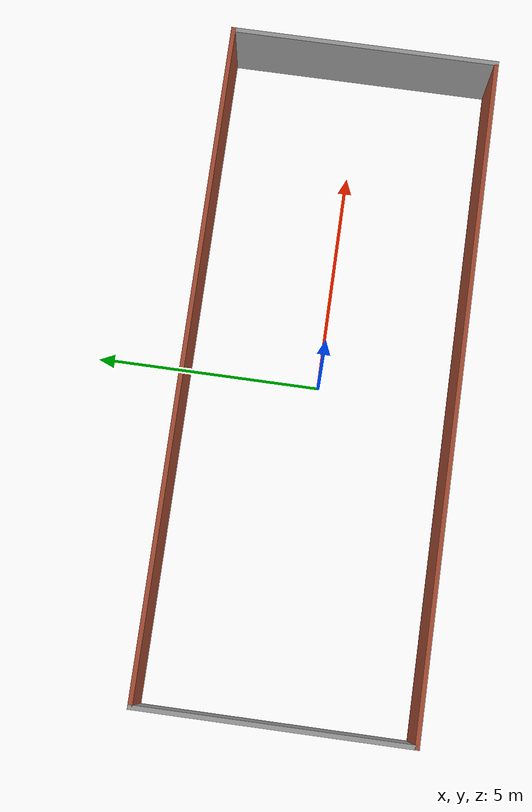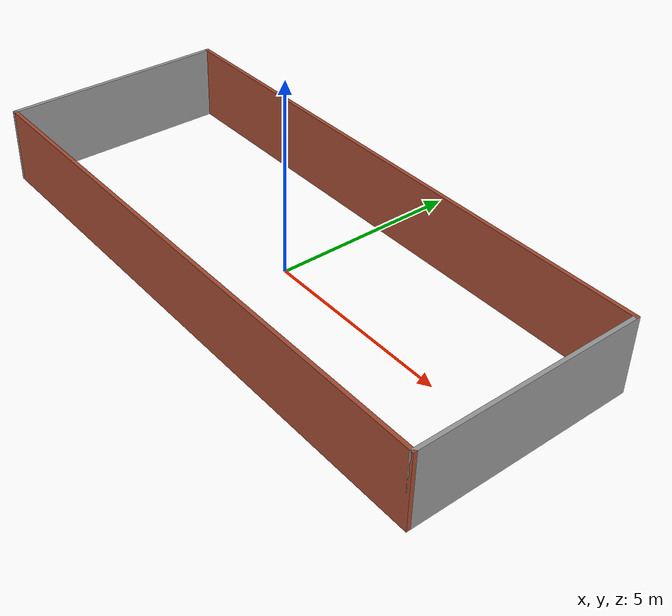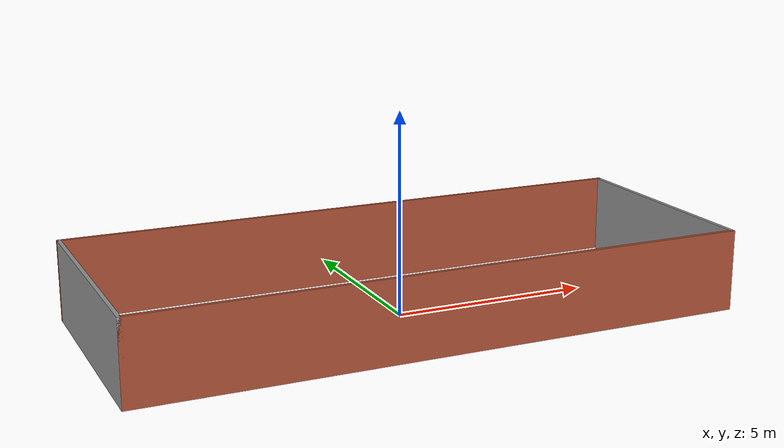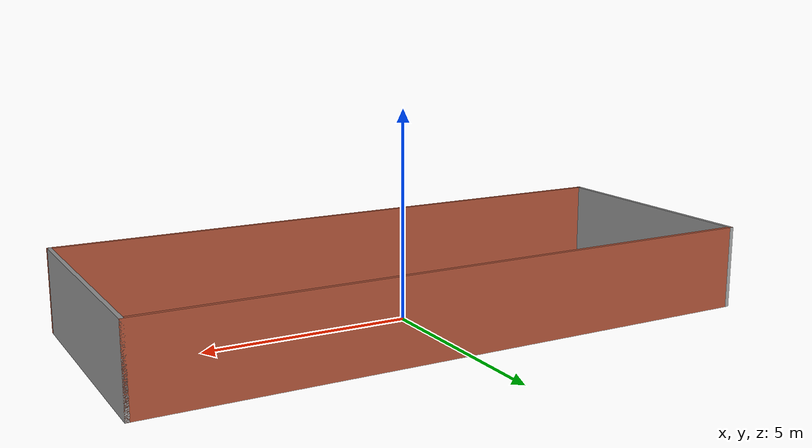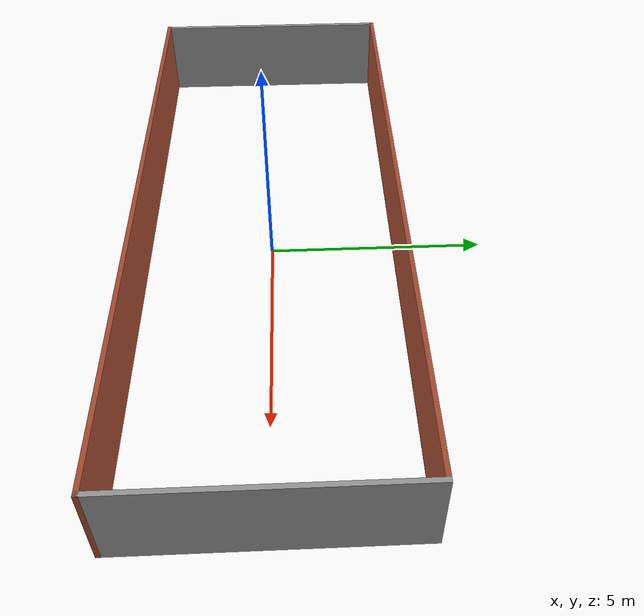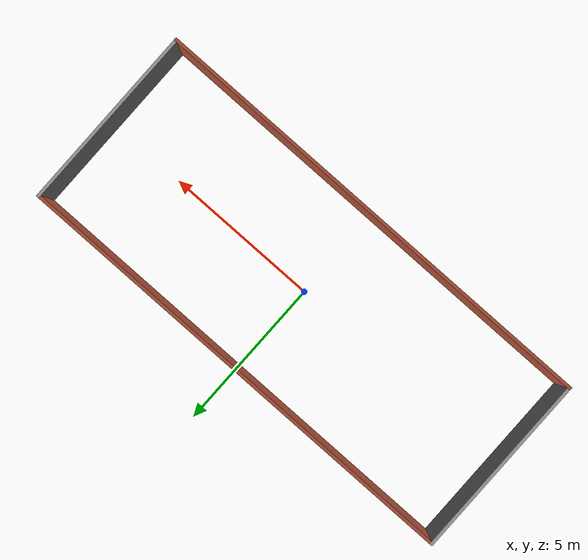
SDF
<?xml version='1.0'?>
<sdf version='1.6'>
  <model name='lab_long'>
    <pose frame=''>0 0 0 0 -0 0</pose>
    <link name='Wall_11'>
      <collision name='Wall_11_Collision'>
        <geometry>
          <box>
            <size>15 0.1 2</size>
          </box>
        </geometry>
        <pose frame=''>0 0 1 0 -0 0</pose>
      </collision>
      <visual name='Wall_11_Visual'>
        <pose frame=''>0 0 1 0 -0 0</pose>
        <geometry>
          <box>
            <size>15 0.1 2</size>
          </box>
        </geometry>
        <material>
          <script>
            <uri>file://media/materials/scripts/gazebo.material</uri>
            <name>Gazebo/Bricks</name>
          </script>
          <ambient>0.760784 0.662745 0.627451 1</ambient>
        </material>
        <meta>
          <layer>0</layer>
        </meta>
      </visual>
      <pose frame=''>0 -2.95 0 0 -0 0</pose>
    </link>
    <link name='Wall_13'>
      <collision name='Wall_13_Collision'>
        <geometry>
          <box>
            <size>6 0.1 2</size>
          </box>
        </geometry>
        <pose frame=''>0 0 1 0 -0 0</pose>
      </collision>
      <visual name='Wall_13_Visual'>
        <pose frame=''>0 0 1 0 -0 0</pose>
        <geometry>
          <box>
            <size>6 0.1 2</size>
          </box>
        </geometry>
        <material>
          <script>
            <uri>file://media/materials/scripts/gazebo.material</uri>
            <name>Gazebo/Grey</name>
          </script>
          <ambient>1 1 1 1</ambient>
        </material>
        <meta>
          <layer>0</layer>
        </meta>
      </visual>
      <pose frame=''>-7.45 0 0 0 -0 -1.5708</pose>
    </link>
    <link name='Wall_15'>
      <collision name='Wall_15_Collision'>
        <geometry>
          <box>
            <size>6 0.1 2</size>
          </box>
        </geometry>
        <pose frame=''>0 0 1 0 -0 0</pose>
      </collision>
      <visual name='Wall_15_Visual'>
        <pose frame=''>0 0 1 0 -0 0</pose>
        <geometry>
          <box>
            <size>6 0.1 2</size>
          </box>
        </geometry>
        <material>
          <script>
            <uri>file://media/materials/scripts/gazebo.material</uri>
            <name>Gazebo/Grey</name>
          </script>
          <ambient>1 1 1 1</ambient>
        </material>
        <meta>
          <layer>0</layer>
        </meta>
      </visual>
      <pose frame=''>7.45 0 0 0 -0 -1.5708</pose>
    </link>
    <link name='Wall_6'>
      <collision name='Wall_6_Collision'>
        <geometry>
          <box>
            <size>15 0.1 2</size>
          </box>
        </geometry>
        <pose frame=''>0 0 1 0 -0 0</pose>
      </collision>
      <visual name='Wall_6_Visual'>
        <pose frame=''>0 0 1 0 -0 0</pose>
        <geometry>
          <box>
            <size>15 0.1 2</size>
          </box>
        </geometry>
        <material>
          <script>
            <uri>file://media/materials/scripts/gazebo.material</uri>
            <name>Gazebo/Bricks</name>
          </script>
          <ambient>0.760784 0.662745 0.627451 1</ambient>
        </material>
        <meta>
          <layer>0</layer>
        </meta>
      </visual>
      <pose frame=''>0 2.95 0 0 -0 0</pose>
    </link>
    <static>1</static>
  </model>
</sdf>
